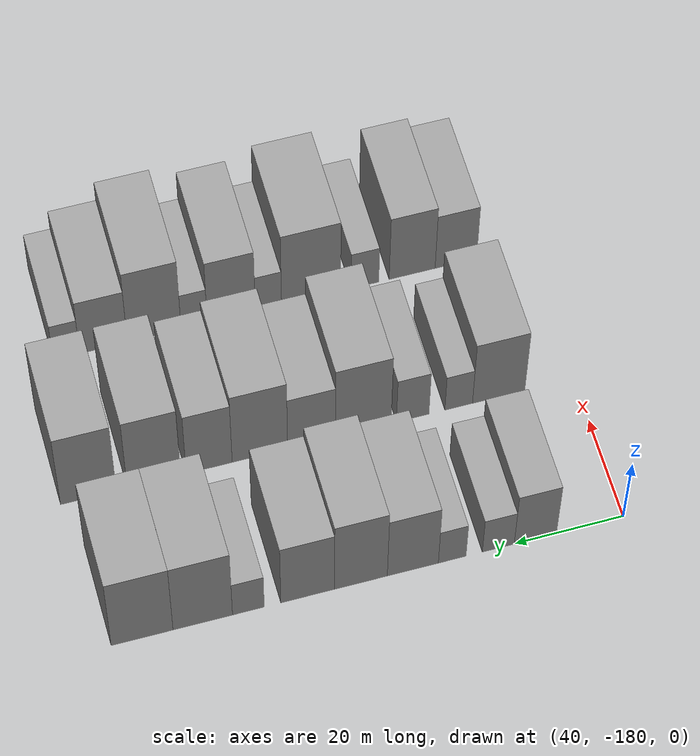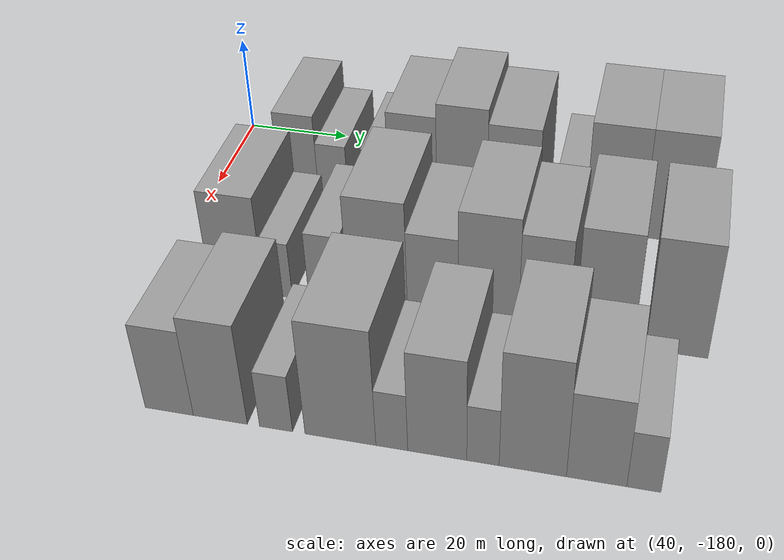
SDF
<sdf version="1.6">
 <world name="default">
  <model name="building_21">
   <static>1</static>
   <pose>50.0000 -163.6512 0 0.000000 0.000000 0.000000</pose>
   <link name="link">
    <pose>0 0 9.00 0 0 0</pose>
    <collision name="collision"><geometry><box><size>20.0000 7.8137 18.0000</size></box></geometry></collision>
    <visual name="visual">
     <cast_shadows>0</cast_shadows>
     <geometry><box><size>20.0000 7.8137 18.0000</size></box></geometry>
     <material>
      <script>
       <uri>model://grey_wall/materials/scripts</uri>
       <uri>model://grey_wall/materials/textures</uri>
       <name>vrc/grey_wall</name>
      </script>
     </material>
    </visual>
   </link>
  </model>
  <model name="building_22">
   <static>1</static>
   <pose>50.0000 -156.8020 0 0.000000 0.000000 0.000000</pose>
   <link name="link">
    <pose>0 0 6.00 0 0 0</pose>
    <collision name="collision"><geometry><box><size>20.0000 5.8847 12.0000</size></box></geometry></collision>
    <visual name="visual">
     <cast_shadows>0</cast_shadows>
     <geometry><box><size>20.0000 5.8847 12.0000</size></box></geometry>
     <material>
      <script>
       <uri>model://grey_wall/materials/scripts</uri>
       <uri>model://grey_wall/materials/textures</uri>
       <name>vrc/grey_wall</name>
      </script>
     </material>
    </visual>
   </link>
  </model>
  <model name="building_23">
   <static>1</static>
   <pose>50.0000 -148.3173 0 0.000000 0.000000 0.000000</pose>
   <link name="link">
    <pose>0 0 6.00 0 0 0</pose>
    <collision name="collision"><geometry><box><size>20.0000 5.0847 12.0000</size></box></geometry></collision>
    <visual name="visual">
     <cast_shadows>0</cast_shadows>
     <geometry><box><size>20.0000 5.0847 12.0000</size></box></geometry>
     <material>
      <script>
       <uri>model://grey_wall/materials/scripts</uri>
       <uri>model://grey_wall/materials/textures</uri>
       <name>vrc/grey_wall</name>
      </script>
     </material>
    </visual>
   </link>
  </model>
  <model name="building_24">
   <static>1</static>
   <pose>50.0000 -141.1029 0 0.000000 0.000000 0.000000</pose>
   <link name="link">
    <pose>0 0 10.50 0 0 0</pose>
    <collision name="collision"><geometry><box><size>20.0000 9.3441 21.0000</size></box></geometry></collision>
    <visual name="visual">
     <cast_shadows>0</cast_shadows>
     <geometry><box><size>20.0000 9.3441 21.0000</size></box></geometry>
     <material>
      <script>
       <uri>model://grey_wall/materials/scripts</uri>
       <uri>model://grey_wall/materials/textures</uri>
       <name>vrc/grey_wall</name>
      </script>
     </material>
    </visual>
   </link>
  </model>
  <model name="building_25">
   <static>1</static>
   <pose>50.0000 -131.5984 0 0.000000 0.000000 0.000000</pose>
   <link name="link">
    <pose>0 0 12.00 0 0 0</pose>
    <collision name="collision"><geometry><box><size>20.0000 9.6648 24.0000</size></box></geometry></collision>
    <visual name="visual">
     <cast_shadows>0</cast_shadows>
     <geometry><box><size>20.0000 9.6648 24.0000</size></box></geometry>
     <material>
      <script>
       <uri>model://grey_wall/materials/scripts</uri>
       <uri>model://grey_wall/materials/textures</uri>
       <name>vrc/grey_wall</name>
      </script>
     </material>
    </visual>
   </link>
  </model>
  <model name="building_26">
   <static>1</static>
   <pose>50.0000 -121.9119 0 0.000000 0.000000 0.000000</pose>
   <link name="link">
    <pose>0 0 10.50 0 0 0</pose>
    <collision name="collision"><geometry><box><size>20.0000 9.7083 21.0000</size></box></geometry></collision>
    <visual name="visual">
     <cast_shadows>0</cast_shadows>
     <geometry><box><size>20.0000 9.7083 21.0000</size></box></geometry>
     <material>
      <script>
       <uri>model://grey_wall/materials/scripts</uri>
       <uri>model://grey_wall/materials/textures</uri>
       <name>vrc/grey_wall</name>
      </script>
     </material>
    </visual>
   </link>
  </model>
  <model name="building_27">
   <static>1</static>
   <pose>50.0000 -111.1926 0 0.000000 0.000000 0.000000</pose>
   <link name="link">
    <pose>0 0 6.00 0 0 0</pose>
    <collision name="collision"><geometry><box><size>20.0000 5.7304 12.0000</size></box></geometry></collision>
    <visual name="visual">
     <cast_shadows>0</cast_shadows>
     <geometry><box><size>20.0000 5.7304 12.0000</size></box></geometry>
     <material>
      <script>
       <uri>model://grey_wall/materials/scripts</uri>
       <uri>model://grey_wall/materials/textures</uri>
       <name>vrc/grey_wall</name>
      </script>
     </material>
    </visual>
   </link>
  </model>
  <model name="building_28">
   <static>1</static>
   <pose>50.0000 -102.9746 0 0.000000 0.000000 0.000000</pose>
   <link name="link">
    <pose>0 0 12.00 0 0 0</pose>
    <collision name="collision"><geometry><box><size>20.0000 10.7056 24.0000</size></box></geometry></collision>
    <visual name="visual">
     <cast_shadows>0</cast_shadows>
     <geometry><box><size>20.0000 10.7056 24.0000</size></box></geometry>
     <material>
      <script>
       <uri>model://grey_wall/materials/scripts</uri>
       <uri>model://grey_wall/materials/textures</uri>
       <name>vrc/grey_wall</name>
      </script>
     </material>
    </visual>
   </link>
  </model>
  <model name="building_29">
   <static>1</static>
   <pose>50.0000 -92.0782 0 0.000000 0.000000 0.000000</pose>
   <link name="link">
    <pose>0 0 12.00 0 0 0</pose>
    <collision name="collision"><geometry><box><size>20.0000 11.0870 24.0000</size></box></geometry></collision>
    <visual name="visual">
     <cast_shadows>0</cast_shadows>
     <geometry><box><size>20.0000 11.0870 24.0000</size></box></geometry>
     <material>
      <script>
       <uri>model://grey_wall/materials/scripts</uri>
       <uri>model://grey_wall/materials/textures</uri>
       <name>vrc/grey_wall</name>
      </script>
     </material>
    </visual>
   </link>
  </model>
  <model name="building_94">
   <static>1</static>
   <pose>79.0000 -165.7490 0 0.000000 0.000000 0.000000</pose>
   <link name="link">
    <pose>0 0 10.50 0 0 0</pose>
    <collision name="collision"><geometry><box><size>20.0000 9.8896 21.0000</size></box></geometry></collision>
    <visual name="visual">
     <cast_shadows>0</cast_shadows>
     <geometry><box><size>20.0000 9.8896 21.0000</size></box></geometry>
     <material>
      <script>
       <uri>model://grey_wall/materials/scripts</uri>
       <uri>model://grey_wall/materials/textures</uri>
       <name>vrc/grey_wall</name>
      </script>
     </material>
    </visual>
   </link>
  </model>
  <model name="building_95">
   <static>1</static>
   <pose>79.0000 -158.2054 0 0.000000 0.000000 0.000000</pose>
   <link name="link">
    <pose>0 0 6.00 0 0 0</pose>
    <collision name="collision"><geometry><box><size>20.0000 5.1976 12.0000</size></box></geometry></collision>
    <visual name="visual">
     <cast_shadows>0</cast_shadows>
     <geometry><box><size>20.0000 5.1976 12.0000</size></box></geometry>
     <material>
      <script>
       <uri>model://grey_wall/materials/scripts</uri>
       <uri>model://grey_wall/materials/textures</uri>
       <name>vrc/grey_wall</name>
      </script>
     </material>
    </visual>
   </link>
  </model>
  <model name="building_96">
   <static>1</static>
   <pose>79.0000 -149.5529 0 0.000000 0.000000 0.000000</pose>
   <link name="link">
    <pose>0 0 7.50 0 0 0</pose>
    <collision name="collision"><geometry><box><size>20.0000 6.1075 15.0000</size></box></geometry></collision>
    <visual name="visual">
     <cast_shadows>0</cast_shadows>
     <geometry><box><size>20.0000 6.1075 15.0000</size></box></geometry>
     <material>
      <script>
       <uri>model://grey_wall/materials/scripts</uri>
       <uri>model://grey_wall/materials/textures</uri>
       <name>vrc/grey_wall</name>
      </script>
     </material>
    </visual>
   </link>
  </model>
  <model name="building_97">
   <static>1</static>
   <pose>79.0000 -140.2811 0 0.000000 0.000000 0.000000</pose>
   <link name="link">
    <pose>0 0 12.00 0 0 0</pose>
    <collision name="collision"><geometry><box><size>20.0000 10.4362 24.0000</size></box></geometry></collision>
    <visual name="visual">
     <cast_shadows>0</cast_shadows>
     <geometry><box><size>20.0000 10.4362 24.0000</size></box></geometry>
     <material>
      <script>
       <uri>model://grey_wall/materials/scripts</uri>
       <uri>model://grey_wall/materials/textures</uri>
       <name>vrc/grey_wall</name>
      </script>
     </material>
    </visual>
   </link>
  </model>
  <model name="building_98">
   <static>1</static>
   <pose>79.0000 -130.6307 0 0.000000 0.000000 0.000000</pose>
   <link name="link">
    <pose>0 0 9.00 0 0 0</pose>
    <collision name="collision"><geometry><box><size>20.0000 8.8647 18.0000</size></box></geometry></collision>
    <visual name="visual">
     <cast_shadows>0</cast_shadows>
     <geometry><box><size>20.0000 8.8647 18.0000</size></box></geometry>
     <material>
      <script>
       <uri>model://grey_wall/materials/scripts</uri>
       <uri>model://grey_wall/materials/textures</uri>
       <name>vrc/grey_wall</name>
      </script>
     </material>
    </visual>
   </link>
  </model>
  <model name="building_99">
   <static>1</static>
   <pose>79.0000 -121.0597 0 0.000000 0.000000 0.000000</pose>
   <link name="link">
    <pose>0 0 12.00 0 0 0</pose>
    <collision name="collision"><geometry><box><size>20.0000 10.2773 24.0000</size></box></geometry></collision>
    <visual name="visual">
     <cast_shadows>0</cast_shadows>
     <geometry><box><size>20.0000 10.2773 24.0000</size></box></geometry>
     <material>
      <script>
       <uri>model://grey_wall/materials/scripts</uri>
       <uri>model://grey_wall/materials/textures</uri>
       <name>vrc/grey_wall</name>
      </script>
     </material>
    </visual>
   </link>
  </model>
  <model name="building_100">
   <static>1</static>
   <pose>79.0000 -111.6714 0 0.000000 0.000000 0.000000</pose>
   <link name="link">
    <pose>0 0 10.50 0 0 0</pose>
    <collision name="collision"><geometry><box><size>20.0000 8.4993 21.0000</size></box></geometry></collision>
    <visual name="visual">
     <cast_shadows>0</cast_shadows>
     <geometry><box><size>20.0000 8.4993 21.0000</size></box></geometry>
     <material>
      <script>
       <uri>model://grey_wall/materials/scripts</uri>
       <uri>model://grey_wall/materials/textures</uri>
       <name>vrc/grey_wall</name>
      </script>
     </material>
    </visual>
   </link>
  </model>
  <model name="building_101">
   <static>1</static>
   <pose>79.0000 -101.5051 0 0.000000 0.000000 0.000000</pose>
   <link name="link">
    <pose>0 0 12.00 0 0 0</pose>
    <collision name="collision"><geometry><box><size>20.0000 9.8333 24.0000</size></box></geometry></collision>
    <visual name="visual">
     <cast_shadows>0</cast_shadows>
     <geometry><box><size>20.0000 9.8333 24.0000</size></box></geometry>
     <material>
      <script>
       <uri>model://grey_wall/materials/scripts</uri>
       <uri>model://grey_wall/materials/textures</uri>
       <name>vrc/grey_wall</name>
      </script>
     </material>
    </visual>
   </link>
  </model>
  <model name="building_102">
   <static>1</static>
   <pose>79.0000 -89.4854 0 0.000000 0.000000 0.000000</pose>
   <link name="link">
    <pose>0 0 12.00 0 0 0</pose>
    <collision name="collision"><geometry><box><size>20.0000 10.2059 24.0000</size></box></geometry></collision>
    <visual name="visual">
     <cast_shadows>0</cast_shadows>
     <geometry><box><size>20.0000 10.2059 24.0000</size></box></geometry>
     <material>
      <script>
       <uri>model://grey_wall/materials/scripts</uri>
       <uri>model://grey_wall/materials/textures</uri>
       <name>vrc/grey_wall</name>
      </script>
     </material>
    </visual>
   </link>
  </model>
  <model name="building_168">
   <static>1</static>
   <pose>108.0000 -166.3527 0 0.000000 0.000000 0.000000</pose>
   <link name="link">
    <pose>0 0 9.00 0 0 0</pose>
    <collision name="collision"><geometry><box><size>20.0000 8.0011 18.0000</size></box></geometry></collision>
    <visual name="visual">
     <cast_shadows>0</cast_shadows>
     <geometry><box><size>20.0000 8.0011 18.0000</size></box></geometry>
     <material>
      <script>
       <uri>model://grey_wall/materials/scripts</uri>
       <uri>model://grey_wall/materials/textures</uri>
       <name>vrc/grey_wall</name>
      </script>
     </material>
    </visual>
   </link>
  </model>
  <model name="building_169">
   <static>1</static>
   <pose>108.0000 -157.9310 0 0.000000 0.000000 0.000000</pose>
   <link name="link">
    <pose>0 0 10.50 0 0 0</pose>
    <collision name="collision"><geometry><box><size>20.0000 8.8424 21.0000</size></box></geometry></collision>
    <visual name="visual">
     <cast_shadows>0</cast_shadows>
     <geometry><box><size>20.0000 8.8424 21.0000</size></box></geometry>
     <material>
      <script>
       <uri>model://grey_wall/materials/scripts</uri>
       <uri>model://grey_wall/materials/textures</uri>
       <name>vrc/grey_wall</name>
      </script>
     </material>
    </visual>
   </link>
  </model>
  <model name="building_170">
   <static>1</static>
   <pose>108.0000 -148.8468 0 0.000000 0.000000 0.000000</pose>
   <link name="link">
    <pose>0 0 6.00 0 0 0</pose>
    <collision name="collision"><geometry><box><size>20.0000 5.3260 12.0000</size></box></geometry></collision>
    <visual name="visual">
     <cast_shadows>0</cast_shadows>
     <geometry><box><size>20.0000 5.3260 12.0000</size></box></geometry>
     <material>
      <script>
       <uri>model://grey_wall/materials/scripts</uri>
       <uri>model://grey_wall/materials/textures</uri>
       <name>vrc/grey_wall</name>
      </script>
     </material>
    </visual>
   </link>
  </model>
  <model name="building_171">
   <static>1</static>
   <pose>108.0000 -138.5633 0 0.000000 0.000000 0.000000</pose>
   <link name="link">
    <pose>0 0 12.00 0 0 0</pose>
    <collision name="collision"><geometry><box><size>20.0000 11.2412 24.0000</size></box></geometry></collision>
    <visual name="visual">
     <cast_shadows>0</cast_shadows>
     <geometry><box><size>20.0000 11.2412 24.0000</size></box></geometry>
     <material>
      <script>
       <uri>model://grey_wall/materials/scripts</uri>
       <uri>model://grey_wall/materials/textures</uri>
       <name>vrc/grey_wall</name>
      </script>
     </material>
    </visual>
   </link>
  </model>
  <model name="building_172">
   <static>1</static>
   <pose>108.0000 -130.4497 0 0.000000 0.000000 0.000000</pose>
   <link name="link">
    <pose>0 0 6.00 0 0 0</pose>
    <collision name="collision"><geometry><box><size>20.0000 4.9860 12.0000</size></box></geometry></collision>
    <visual name="visual">
     <cast_shadows>0</cast_shadows>
     <geometry><box><size>20.0000 4.9860 12.0000</size></box></geometry>
     <material>
      <script>
       <uri>model://grey_wall/materials/scripts</uri>
       <uri>model://grey_wall/materials/textures</uri>
       <name>vrc/grey_wall</name>
      </script>
     </material>
    </visual>
   </link>
  </model>
  <model name="building_173">
   <static>1</static>
   <pose>108.0000 -123.4048 0 0.000000 0.000000 0.000000</pose>
   <link name="link">
    <pose>0 0 10.50 0 0 0</pose>
    <collision name="collision"><geometry><box><size>20.0000 9.1038 21.0000</size></box></geometry></collision>
    <visual name="visual">
     <cast_shadows>0</cast_shadows>
     <geometry><box><size>20.0000 9.1038 21.0000</size></box></geometry>
     <material>
      <script>
       <uri>model://grey_wall/materials/scripts</uri>
       <uri>model://grey_wall/materials/textures</uri>
       <name>vrc/grey_wall</name>
      </script>
     </material>
    </visual>
   </link>
  </model>
  <model name="building_174">
   <static>1</static>
   <pose>108.0000 -116.3796 0 0.000000 0.000000 0.000000</pose>
   <link name="link">
    <pose>0 0 6.00 0 0 0</pose>
    <collision name="collision"><geometry><box><size>20.0000 4.9465 12.0000</size></box></geometry></collision>
    <visual name="visual">
     <cast_shadows>0</cast_shadows>
     <geometry><box><size>20.0000 4.9465 12.0000</size></box></geometry>
     <material>
      <script>
       <uri>model://grey_wall/materials/scripts</uri>
       <uri>model://grey_wall/materials/textures</uri>
       <name>vrc/grey_wall</name>
      </script>
     </material>
    </visual>
   </link>
  </model>
  <model name="building_175">
   <static>1</static>
   <pose>108.0000 -108.8435 0 0.000000 0.000000 0.000000</pose>
   <link name="link">
    <pose>0 0 12.00 0 0 0</pose>
    <collision name="collision"><geometry><box><size>20.0000 10.1258 24.0000</size></box></geometry></collision>
    <visual name="visual">
     <cast_shadows>0</cast_shadows>
     <geometry><box><size>20.0000 10.1258 24.0000</size></box></geometry>
     <material>
      <script>
       <uri>model://grey_wall/materials/scripts</uri>
       <uri>model://grey_wall/materials/textures</uri>
       <name>vrc/grey_wall</name>
      </script>
     </material>
    </visual>
   </link>
  </model>
  <model name="building_176">
   <static>1</static>
   <pose>108.0000 -99.3198 0 0.000000 0.000000 0.000000</pose>
   <link name="link">
    <pose>0 0 9.00 0 0 0</pose>
    <collision name="collision"><geometry><box><size>20.0000 8.9215 18.0000</size></box></geometry></collision>
    <visual name="visual">
     <cast_shadows>0</cast_shadows>
     <geometry><box><size>20.0000 8.9215 18.0000</size></box></geometry>
     <material>
      <script>
       <uri>model://grey_wall/materials/scripts</uri>
       <uri>model://grey_wall/materials/textures</uri>
       <name>vrc/grey_wall</name>
      </script>
     </material>
    </visual>
   </link>
  </model>
  <model name="building_177">
   <static>1</static>
   <pose>108.0000 -92.3599 0 0.000000 0.000000 0.000000</pose>
   <link name="link">
    <pose>0 0 6.00 0 0 0</pose>
    <collision name="collision"><geometry><box><size>20.0000 4.9983 12.0000</size></box></geometry></collision>
    <visual name="visual">
     <cast_shadows>0</cast_shadows>
     <geometry><box><size>20.0000 4.9983 12.0000</size></box></geometry>
     <material>
      <script>
       <uri>model://grey_wall/materials/scripts</uri>
       <uri>model://grey_wall/materials/textures</uri>
       <name>vrc/grey_wall</name>
      </script>
     </material>
    </visual>
   </link>
  </model>
 </world>
</sdf>
